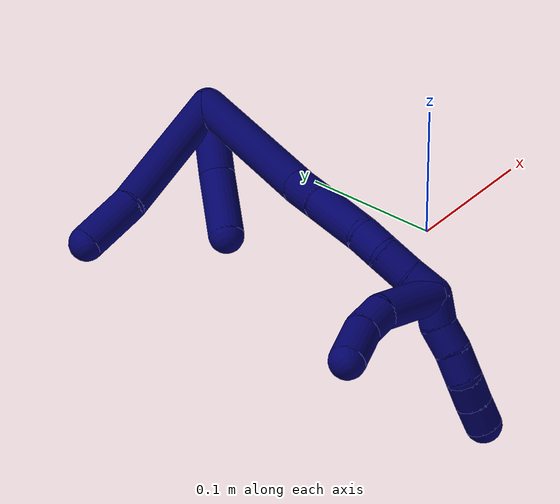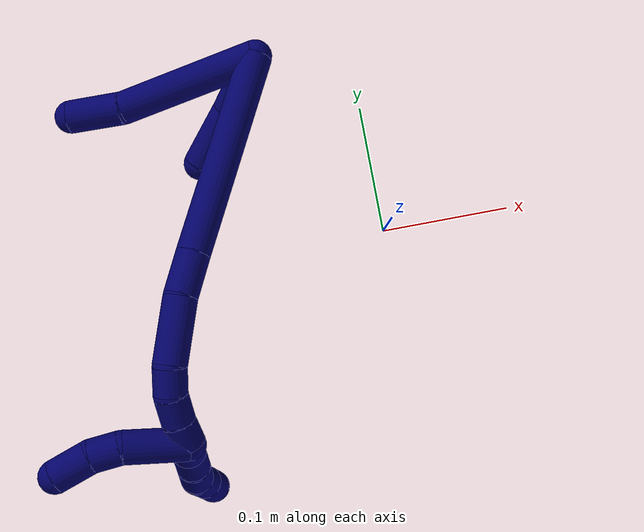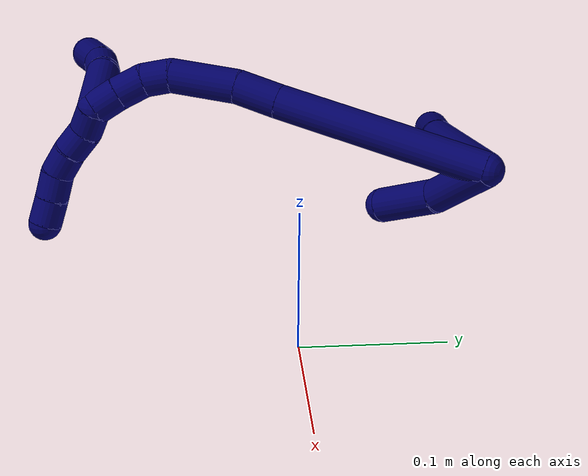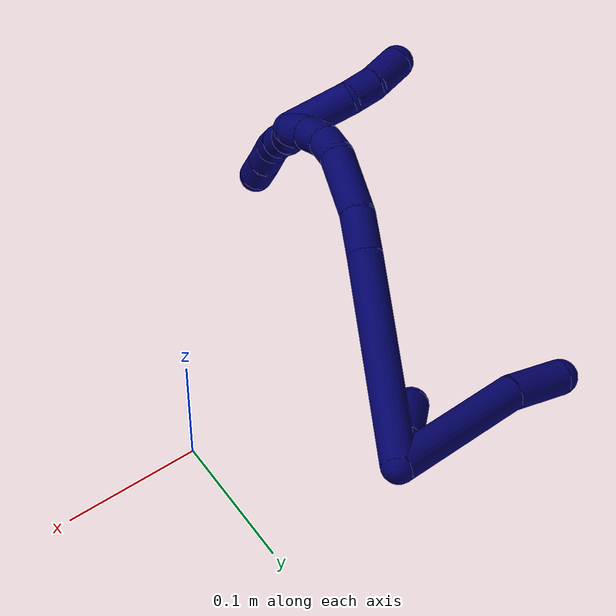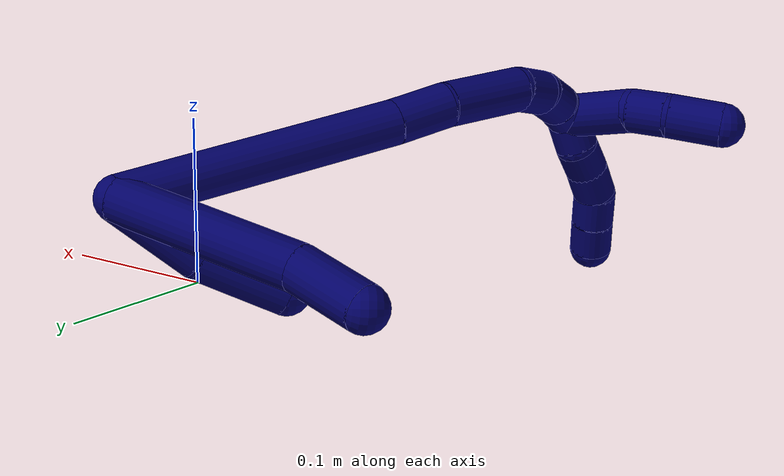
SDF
<sdf version="1.7">
 <world name="default">
  <model name="7">
   <static>0</static>
   <link name="7">
    <collision name="collision-cylinder-e_1_2_8">
     <pose>0.015121 0.030526 0.041465 -0.634601 0.285648 -0.094379</pose>
     <geometry><cylinder><radius>0.0125</radius><length>0.107327</length></cylinder></geometry>
     <surface>
      <friction><ode><mu>1.16</mu><mu2>1.16</mu2><slip1>0</slip1><slip2>0</slip2></ode></friction>
      <contact><ode><kp>1e+06</kp><kd>1</kd><max_vel>0</max_vel><min_depth>0.001</min_depth></ode></contact>
     </surface>
    </collision>
    <visual name="visual-cylinder-e_1_2_8">
     <pose>0.015121 0.030526 0.041465 -0.634601 0.285648 -0.094379</pose>
     <geometry><cylinder><radius>0.0125</radius><length>0.107327</length></cylinder></geometry>
     <material><ambient>0.003922 0 0.403922 1</ambient></material>
    </visual>
    <collision name="collision-cylinder-e_2_8_6">
     <pose>0.036765 0.076515 0.096104 -0.865147 0.310677 -0.144365</pose>
     <geometry><cylinder><radius>0.0125</radius><length>0.042673</length></cylinder></geometry>
     <surface>
      <friction><ode><mu>1.16</mu><mu2>1.16</mu2><slip1>0</slip1><slip2>0</slip2></ode></friction>
      <contact><ode><kp>1e+06</kp><kd>1</kd><max_vel>0</max_vel><min_depth>0.001</min_depth></ode></contact>
     </surface>
    </collision>
    <visual name="visual-cylinder-e_2_8_6">
     <pose>0.036765 0.076515 0.096104 -0.865147 0.310677 -0.144365</pose>
     <geometry><cylinder><radius>0.0125</radius><length>0.042673</length></cylinder></geometry>
     <material><ambient>0.003922 0 0.403922 1</ambient></material>
    </visual>
    <collision name="collision-cylinder-e_1_2_9">
     <pose>-0.011297 0.009041 0.021035 -0.405925 -0.458378 0.095946</pose>
     <geometry><cylinder><radius>0.0125</radius><length>0.051062</length></cylinder></geometry>
     <surface>
      <friction><ode><mu>1.16</mu><mu2>1.16</mu2><slip1>0</slip1><slip2>0</slip2></ode></friction>
      <contact><ode><kp>1e+06</kp><kd>1</kd><max_vel>0</max_vel><min_depth>0.001</min_depth></ode></contact>
     </surface>
    </collision>
    <visual name="visual-cylinder-e_1_2_9">
     <pose>-0.011297 0.009041 0.021035 -0.405925 -0.458378 0.095946</pose>
     <geometry><cylinder><radius>0.0125</radius><length>0.051062</length></cylinder></geometry>
     <material><ambient>0.003922 0 0.403922 1</ambient></material>
    </visual>
    <collision name="collision-cylinder-e_2_9_5">
     <pose>-0.029348 0.023549 0.064944 -0.234619 -0.279646 0.03317</pose>
     <geometry><cylinder><radius>0.0125</radius><length>0.048938</length></cylinder></geometry>
     <surface>
      <friction><ode><mu>1.16</mu><mu2>1.16</mu2><slip1>0</slip1><slip2>0</slip2></ode></friction>
      <contact><ode><kp>1e+06</kp><kd>1</kd><max_vel>0</max_vel><min_depth>0.001</min_depth></ode></contact>
     </surface>
    </collision>
    <visual name="visual-cylinder-e_2_9_5">
     <pose>-0.029348 0.023549 0.064944 -0.234619 -0.279646 0.03317</pose>
     <geometry><cylinder><radius>0.0125</radius><length>0.048938</length></cylinder></geometry>
     <material><ambient>0.003922 0 0.403922 1</ambient></material>
    </visual>
    <collision name="collision-cylinder-e_1_2_10">
     <pose>0.001326 -0.027809 0.072666 0.365505 0.017039 0.003149</pose>
     <geometry><cylinder><radius>0.0125</radius><length>0.155633</length></cylinder></geometry>
     <surface>
      <friction><ode><mu>1.16</mu><mu2>1.16</mu2><slip1>0</slip1><slip2>0</slip2></ode></friction>
      <contact><ode><kp>1e+06</kp><kd>1</kd><max_vel>0</max_vel><min_depth>0.001</min_depth></ode></contact>
     </surface>
    </collision>
    <visual name="visual-cylinder-e_1_2_10">
     <pose>0.001326 -0.027809 0.072666 0.365505 0.017039 0.003149</pose>
     <geometry><cylinder><radius>0.0125</radius><length>0.155633</length></cylinder></geometry>
     <material><ambient>0.003922 0 0.403922 1</ambient></material>
    </visual>
    <collision name="collision-cylinder-e_2_10_11">
     <pose>0.003271 -0.062087 0.160191 0.410543 0.038175 0.007949</pose>
     <geometry><cylinder><radius>0.0125</radius><length>0.032436</length></cylinder></geometry>
     <surface>
      <friction><ode><mu>1.16</mu><mu2>1.16</mu2><slip1>0</slip1><slip2>0</slip2></ode></friction>
      <contact><ode><kp>1e+06</kp><kd>1</kd><max_vel>0</max_vel><min_depth>0.001</min_depth></ode></contact>
     </surface>
    </collision>
    <visual name="visual-cylinder-e_2_10_11">
     <pose>0.003271 -0.062087 0.160191 0.410543 0.038175 0.007949</pose>
     <geometry><cylinder><radius>0.0125</radius><length>0.032436</length></cylinder></geometry>
     <material><ambient>0.003922 0 0.403922 1</ambient></material>
    </visual>
    <collision name="collision-cylinder-e_3_11_12">
     <pose>0.000409 -0.07854 0.197393 0.420294 -0.141286 -0.030184</pose>
     <geometry><cylinder><radius>0.0125</radius><length>0.049438</length></cylinder></geometry>
     <surface>
      <friction><ode><mu>1.16</mu><mu2>1.16</mu2><slip1>0</slip1><slip2>0</slip2></ode></friction>
      <contact><ode><kp>1e+06</kp><kd>1</kd><max_vel>0</max_vel><min_depth>0.001</min_depth></ode></contact>
     </surface>
    </collision>
    <visual name="visual-cylinder-e_3_11_12">
     <pose>0.000409 -0.07854 0.197393 0.420294 -0.141286 -0.030184</pose>
     <geometry><cylinder><radius>0.0125</radius><length>0.049438</length></cylinder></geometry>
     <material><ambient>0.003922 0 0.403922 1</ambient></material>
    </visual>
    <collision name="collision-cylinder-e_4_12_13">
     <pose>-0.007703 -0.091763 0.228268 0.362629 -0.469618 -0.087656</pose>
     <geometry><cylinder><radius>0.0125</radius><length>0.020466</length></cylinder></geometry>
     <surface>
      <friction><ode><mu>1.16</mu><mu2>1.16</mu2><slip1>0</slip1><slip2>0</slip2></ode></friction>
      <contact><ode><kp>1e+06</kp><kd>1</kd><max_vel>0</max_vel><min_depth>0.001</min_depth></ode></contact>
     </surface>
    </collision>
    <visual name="visual-cylinder-e_4_12_13">
     <pose>-0.007703 -0.091763 0.228268 0.362629 -0.469618 -0.087656</pose>
     <geometry><cylinder><radius>0.0125</radius><length>0.020466</length></cylinder></geometry>
     <material><ambient>0.003922 0 0.403922 1</ambient></material>
    </visual>
    <collision name="collision-cylinder-e_5_13_14">
     <pose>-0.020036 -0.097781 0.243862 0.375217 -0.792682 -0.158559</pose>
     <geometry><cylinder><radius>0.0125</radius><length>0.021628</length></cylinder></geometry>
     <surface>
      <friction><ode><mu>1.16</mu><mu2>1.16</mu2><slip1>0</slip1><slip2>0</slip2></ode></friction>
      <contact><ode><kp>1e+06</kp><kd>1</kd><max_vel>0</max_vel><min_depth>0.001</min_depth></ode></contact>
     </surface>
    </collision>
    <visual name="visual-cylinder-e_5_13_14">
     <pose>-0.020036 -0.097781 0.243862 0.375217 -0.792682 -0.158559</pose>
     <geometry><cylinder><radius>0.0125</radius><length>0.021628</length></cylinder></geometry>
     <material><ambient>0.003922 0 0.403922 1</ambient></material>
    </visual>
    <collision name="collision-cylinder-e_6_14_1">
     <pose>-0.035788 -0.103307 0.256555 0.45339 -0.909558 -0.224619</pose>
     <geometry><cylinder><radius>0.0125</radius><length>0.020399</length></cylinder></geometry>
     <surface>
      <friction><ode><mu>1.16</mu><mu2>1.16</mu2><slip1>0</slip1><slip2>0</slip2></ode></friction>
      <contact><ode><kp>1e+06</kp><kd>1</kd><max_vel>0</max_vel><min_depth>0.001</min_depth></ode></contact>
     </surface>
    </collision>
    <visual name="visual-cylinder-e_6_14_1">
     <pose>-0.035788 -0.103307 0.256555 0.45339 -0.909558 -0.224619</pose>
     <geometry><cylinder><radius>0.0125</radius><length>0.020399</length></cylinder></geometry>
     <material><ambient>0.003922 0 0.403922 1</ambient></material>
    </visual>
    <collision name="collision-cylinder-e_1_1_15">
     <pose>-0.027112 -0.094552 0.275007 -0.731027 0.77078 -0.308054</pose>
     <geometry><cylinder><radius>0.0125</radius><length>0.048014</length></cylinder></geometry>
     <surface>
      <friction><ode><mu>1.16</mu><mu2>1.16</mu2><slip1>0</slip1><slip2>0</slip2></ode></friction>
      <contact><ode><kp>1e+06</kp><kd>1</kd><max_vel>0</max_vel><min_depth>0.001</min_depth></ode></contact>
     </surface>
    </collision>
    <visual name="visual-cylinder-e_1_1_15">
     <pose>-0.027112 -0.094552 0.275007 -0.731027 0.77078 -0.308054</pose>
     <geometry><cylinder><radius>0.0125</radius><length>0.048014</length></cylinder></geometry>
     <material><ambient>0.003922 0 0.403922 1</ambient></material>
    </visual>
    <collision name="collision-cylinder-e_2_15_16">
     <pose>-0.005492 -0.077447 0.296072 -0.597313 0.456415 -0.142762</pose>
     <geometry><cylinder><radius>0.0125</radius><length>0.022214</length></cylinder></geometry>
     <surface>
      <friction><ode><mu>1.16</mu><mu2>1.16</mu2><slip1>0</slip1><slip2>0</slip2></ode></friction>
      <contact><ode><kp>1e+06</kp><kd>1</kd><max_vel>0</max_vel><min_depth>0.001</min_depth></ode></contact>
     </surface>
    </collision>
    <visual name="visual-cylinder-e_2_15_16">
     <pose>-0.005492 -0.077447 0.296072 -0.597313 0.456415 -0.142762</pose>
     <geometry><cylinder><radius>0.0125</radius><length>0.022214</length></cylinder></geometry>
     <material><ambient>0.003922 0 0.403922 1</ambient></material>
    </visual>
    <collision name="collision-cylinder-e_3_16_4">
     <pose>0.003251 -0.065903 0.317414 -0.425573 0.261431 -0.056793</pose>
     <geometry><cylinder><radius>0.0125</radius><length>0.029773</length></cylinder></geometry>
     <surface>
      <friction><ode><mu>1.16</mu><mu2>1.16</mu2><slip1>0</slip1><slip2>0</slip2></ode></friction>
      <contact><ode><kp>1e+06</kp><kd>1</kd><max_vel>0</max_vel><min_depth>0.001</min_depth></ode></contact>
     </surface>
    </collision>
    <visual name="visual-cylinder-e_3_16_4">
     <pose>0.003251 -0.065903 0.317414 -0.425573 0.261431 -0.056793</pose>
     <geometry><cylinder><radius>0.0125</radius><length>0.029773</length></cylinder></geometry>
     <material><ambient>0.003922 0 0.403922 1</ambient></material>
    </visual>
    <collision name="collision-cylinder-e_1_1_17">
     <pose>-0.05159 -0.101369 0.266427 -0.834657 -0.887112 0.415249</pose>
     <geometry><cylinder><radius>0.0125</radius><length>0.02</length></cylinder></geometry>
     <surface>
      <friction><ode><mu>1.16</mu><mu2>1.16</mu2><slip1>0</slip1><slip2>0</slip2></ode></friction>
      <contact><ode><kp>1e+06</kp><kd>1</kd><max_vel>0</max_vel><min_depth>0.001</min_depth></ode></contact>
     </surface>
    </collision>
    <visual name="visual-cylinder-e_1_1_17">
     <pose>-0.05159 -0.101369 0.266427 -0.834657 -0.887112 0.415249</pose>
     <geometry><cylinder><radius>0.0125</radius><length>0.02</length></cylinder></geometry>
     <material><ambient>0.003922 0 0.403922 1</ambient></material>
    </visual>
    <collision name="collision-cylinder-e_2_17_18">
     <pose>-0.067822 -0.095252 0.275771 -0.274427 -1.01212 0.15275</pose>
     <geometry><cylinder><radius>0.0125</radius><length>0.02</length></cylinder></geometry>
     <surface>
      <friction><ode><mu>1.16</mu><mu2>1.16</mu2><slip1>0</slip1><slip2>0</slip2></ode></friction>
      <contact><ode><kp>1e+06</kp><kd>1</kd><max_vel>0</max_vel><min_depth>0.001</min_depth></ode></contact>
     </surface>
    </collision>
    <visual name="visual-cylinder-e_2_17_18">
     <pose>-0.067822 -0.095252 0.275771 -0.274427 -1.01212 0.15275</pose>
     <geometry><cylinder><radius>0.0125</radius><length>0.02</length></cylinder></geometry>
     <material><ambient>0.003922 0 0.403922 1</ambient></material>
    </visual>
    <collision name="collision-cylinder-e_3_18_19">
     <pose>-0.08475 -0.090987 0.285415 -0.55704 -1.00621 0.312182</pose>
     <geometry><cylinder><radius>0.0125</radius><length>0.02</length></cylinder></geometry>
     <surface>
      <friction><ode><mu>1.16</mu><mu2>1.16</mu2><slip1>0</slip1><slip2>0</slip2></ode></friction>
      <contact><ode><kp>1e+06</kp><kd>1</kd><max_vel>0</max_vel><min_depth>0.001</min_depth></ode></contact>
     </surface>
    </collision>
    <visual name="visual-cylinder-e_3_18_19">
     <pose>-0.08475 -0.090987 0.285415 -0.55704 -1.00621 0.312182</pose>
     <geometry><cylinder><radius>0.0125</radius><length>0.02</length></cylinder></geometry>
     <material><ambient>0.003922 0 0.403922 1</ambient></material>
    </visual>
    <collision name="collision-cylinder-e_4_19_20">
     <pose>-0.102519 -0.084772 0.29124 -1.20833 -1.20029 0.882624</pose>
     <geometry><cylinder><radius>0.0125</radius><length>0.02</length></cylinder></geometry>
     <surface>
      <friction><ode><mu>1.16</mu><mu2>1.16</mu2><slip1>0</slip1><slip2>0</slip2></ode></friction>
      <contact><ode><kp>1e+06</kp><kd>1</kd><max_vel>0</max_vel><min_depth>0.001</min_depth></ode></contact>
     </surface>
    </collision>
    <visual name="visual-cylinder-e_4_19_20">
     <pose>-0.102519 -0.084772 0.29124 -1.20833 -1.20029 0.882624</pose>
     <geometry><cylinder><radius>0.0125</radius><length>0.02</length></cylinder></geometry>
     <material><ambient>0.003922 0 0.403922 1</ambient></material>
    </visual>
    <collision name="collision-cylinder-e_5_20_3">
     <pose>-0.121235 -0.078309 0.294035 -1.11445 -1.22086 0.822114</pose>
     <geometry><cylinder><radius>0.0125</radius><length>0.02</length></cylinder></geometry>
     <surface>
      <friction><ode><mu>1.16</mu><mu2>1.16</mu2><slip1>0</slip1><slip2>0</slip2></ode></friction>
      <contact><ode><kp>1e+06</kp><kd>1</kd><max_vel>0</max_vel><min_depth>0.001</min_depth></ode></contact>
     </surface>
    </collision>
    <visual name="visual-cylinder-e_5_20_3">
     <pose>-0.121235 -0.078309 0.294035 -1.11445 -1.22086 0.822114</pose>
     <geometry><cylinder><radius>0.0125</radius><length>0.02</length></cylinder></geometry>
     <material><ambient>0.003922 0 0.403922 1</ambient></material>
    </visual>
    <collision name="collision-sphere-3">
     <pose>-0.130629 -0.075232 0.295546 0 -0 0</pose>
     <geometry><sphere><radius>0.0125</radius></sphere></geometry>
     <surface>
      <friction><ode><mu>1.16</mu><mu2>1.16</mu2><slip1>0</slip1><slip2>0</slip2></ode></friction>
      <contact><ode><kp>1e+06</kp><kd>1</kd><max_vel>0</max_vel><min_depth>0.001</min_depth></ode></contact>
     </surface>
    </collision>
    <visual name="visual-sphere-3">
     <pose>-0.130629 -0.075232 0.295546 0 -0 0</pose>
     <geometry><sphere><radius>0.0125</radius></sphere></geometry>
     <material><ambient>0.003922 0 0.403922 1</ambient></material>
    </visual>
    <collision name="collision-sphere-20">
     <pose>-0.111841 -0.081387 0.292524 0 -0 0</pose>
     <geometry><sphere><radius>0.0125</radius></sphere></geometry>
     <surface>
      <friction><ode><mu>1.16</mu><mu2>1.16</mu2><slip1>0</slip1><slip2>0</slip2></ode></friction>
      <contact><ode><kp>1e+06</kp><kd>1</kd><max_vel>0</max_vel><min_depth>0.001</min_depth></ode></contact>
     </surface>
    </collision>
    <visual name="visual-sphere-20">
     <pose>-0.111841 -0.081387 0.292524 0 -0 0</pose>
     <geometry><sphere><radius>0.0125</radius></sphere></geometry>
     <material><ambient>0.003922 0 0.403922 1</ambient></material>
    </visual>
    <collision name="collision-sphere-19">
     <pose>-0.093198 -0.088158 0.289957 0 -0 0</pose>
     <geometry><sphere><radius>0.0125</radius></sphere></geometry>
     <surface>
      <friction><ode><mu>1.16</mu><mu2>1.16</mu2><slip1>0</slip1><slip2>0</slip2></ode></friction>
      <contact><ode><kp>1e+06</kp><kd>1</kd><max_vel>0</max_vel><min_depth>0.001</min_depth></ode></contact>
     </surface>
    </collision>
    <visual name="visual-sphere-19">
     <pose>-0.093198 -0.088158 0.289957 0 -0 0</pose>
     <geometry><sphere><radius>0.0125</radius></sphere></geometry>
     <material><ambient>0.003922 0 0.403922 1</ambient></material>
    </visual>
    <collision name="collision-sphere-10">
     <pose>0.002652 -0.055619 0.145332 0 -0 0</pose>
     <geometry><sphere><radius>0.0125</radius></sphere></geometry>
     <surface>
      <friction><ode><mu>1.16</mu><mu2>1.16</mu2><slip1>0</slip1><slip2>0</slip2></ode></friction>
      <contact><ode><kp>1e+06</kp><kd>1</kd><max_vel>0</max_vel><min_depth>0.001</min_depth></ode></contact>
     </surface>
    </collision>
    <visual name="visual-sphere-10">
     <pose>0.002652 -0.055619 0.145332 0 -0 0</pose>
     <geometry><sphere><radius>0.0125</radius></sphere></geometry>
     <material><ambient>0.003922 0 0.403922 1</ambient></material>
    </visual>
    <collision name="collision-sphere-5">
     <pose>-0.036102 0.029016 0.087818 0 -0 0</pose>
     <geometry><sphere><radius>0.0125</radius></sphere></geometry>
     <surface>
      <friction><ode><mu>1.16</mu><mu2>1.16</mu2><slip1>0</slip1><slip2>0</slip2></ode></friction>
      <contact><ode><kp>1e+06</kp><kd>1</kd><max_vel>0</max_vel><min_depth>0.001</min_depth></ode></contact>
     </surface>
    </collision>
    <visual name="visual-sphere-5">
     <pose>-0.036102 0.029016 0.087818 0 -0 0</pose>
     <geometry><sphere><radius>0.0125</radius></sphere></geometry>
     <material><ambient>0.003922 0 0.403922 1</ambient></material>
    </visual>
    <collision name="collision-sphere-6">
     <pose>0.043288 0.091978 0.109279 0 -0 0</pose>
     <geometry><sphere><radius>0.0125</radius></sphere></geometry>
     <surface>
      <friction><ode><mu>1.16</mu><mu2>1.16</mu2><slip1>0</slip1><slip2>0</slip2></ode></friction>
      <contact><ode><kp>1e+06</kp><kd>1</kd><max_vel>0</max_vel><min_depth>0.001</min_depth></ode></contact>
     </surface>
    </collision>
    <visual name="visual-sphere-6">
     <pose>0.043288 0.091978 0.109279 0 -0 0</pose>
     <geometry><sphere><radius>0.0125</radius></sphere></geometry>
     <material><ambient>0.003922 0 0.403922 1</ambient></material>
    </visual>
    <collision name="collision-sphere-9">
     <pose>-0.022595 0.018081 0.04207 0 -0 0</pose>
     <geometry><sphere><radius>0.0125</radius></sphere></geometry>
     <surface>
      <friction><ode><mu>1.16</mu><mu2>1.16</mu2><slip1>0</slip1><slip2>0</slip2></ode></friction>
      <contact><ode><kp>1e+06</kp><kd>1</kd><max_vel>0</max_vel><min_depth>0.001</min_depth></ode></contact>
     </surface>
    </collision>
    <visual name="visual-sphere-9">
     <pose>-0.022595 0.018081 0.04207 0 -0 0</pose>
     <geometry><sphere><radius>0.0125</radius></sphere></geometry>
     <material><ambient>0.003922 0 0.403922 1</ambient></material>
    </visual>
    <collision name="collision-sphere-2">
     <geometry><sphere><radius>0.0125</radius></sphere></geometry>
     <surface>
      <friction><ode><mu>1.16</mu><mu2>1.16</mu2><slip1>0</slip1><slip2>0</slip2></ode></friction>
      <contact><ode><kp>1e+06</kp><kd>1</kd><max_vel>0</max_vel><min_depth>0.001</min_depth></ode></contact>
     </surface>
    </collision>
    <visual name="visual-sphere-2">
     <geometry><sphere><radius>0.0125</radius></sphere></geometry>
     <material><ambient>0.003922 0 0.403922 1</ambient></material>
    </visual>
    <collision name="collision-sphere-8">
     <pose>0.030243 0.061051 0.082929 0 -0 0</pose>
     <geometry><sphere><radius>0.0125</radius></sphere></geometry>
     <surface>
      <friction><ode><mu>1.16</mu><mu2>1.16</mu2><slip1>0</slip1><slip2>0</slip2></ode></friction>
      <contact><ode><kp>1e+06</kp><kd>1</kd><max_vel>0</max_vel><min_depth>0.001</min_depth></ode></contact>
     </surface>
    </collision>
    <visual name="visual-sphere-8">
     <pose>0.030243 0.061051 0.082929 0 -0 0</pose>
     <geometry><sphere><radius>0.0125</radius></sphere></geometry>
     <material><ambient>0.003922 0 0.403922 1</ambient></material>
    </visual>
    <collision name="collision-sphere-11">
     <pose>0.00389 -0.068555 0.175051 0 -0 0</pose>
     <geometry><sphere><radius>0.0125</radius></sphere></geometry>
     <surface>
      <friction><ode><mu>1.16</mu><mu2>1.16</mu2><slip1>0</slip1><slip2>0</slip2></ode></friction>
      <contact><ode><kp>1e+06</kp><kd>1</kd><max_vel>0</max_vel><min_depth>0.001</min_depth></ode></contact>
     </surface>
    </collision>
    <visual name="visual-sphere-11">
     <pose>0.00389 -0.068555 0.175051 0 -0 0</pose>
     <geometry><sphere><radius>0.0125</radius></sphere></geometry>
     <material><ambient>0.003922 0 0.403922 1</ambient></material>
    </visual>
    <collision name="collision-sphere-12">
     <pose>-0.003072 -0.088526 0.219736 0 -0 0</pose>
     <geometry><sphere><radius>0.0125</radius></sphere></geometry>
     <surface>
      <friction><ode><mu>1.16</mu><mu2>1.16</mu2><slip1>0</slip1><slip2>0</slip2></ode></friction>
      <contact><ode><kp>1e+06</kp><kd>1</kd><max_vel>0</max_vel><min_depth>0.001</min_depth></ode></contact>
     </surface>
    </collision>
    <visual name="visual-sphere-12">
     <pose>-0.003072 -0.088526 0.219736 0 -0 0</pose>
     <geometry><sphere><radius>0.0125</radius></sphere></geometry>
     <material><ambient>0.003922 0 0.403922 1</ambient></material>
    </visual>
    <collision name="collision-sphere-13">
     <pose>-0.012334 -0.095 0.2368 0 -0 0</pose>
     <geometry><sphere><radius>0.0125</radius></sphere></geometry>
     <surface>
      <friction><ode><mu>1.16</mu><mu2>1.16</mu2><slip1>0</slip1><slip2>0</slip2></ode></friction>
      <contact><ode><kp>1e+06</kp><kd>1</kd><max_vel>0</max_vel><min_depth>0.001</min_depth></ode></contact>
     </surface>
    </collision>
    <visual name="visual-sphere-13">
     <pose>-0.012334 -0.095 0.2368 0 -0 0</pose>
     <geometry><sphere><radius>0.0125</radius></sphere></geometry>
     <material><ambient>0.003922 0 0.403922 1</ambient></material>
    </visual>
    <collision name="collision-sphere-14">
     <pose>-0.027738 -0.100563 0.250925 0 -0 0</pose>
     <geometry><sphere><radius>0.0125</radius></sphere></geometry>
     <surface>
      <friction><ode><mu>1.16</mu><mu2>1.16</mu2><slip1>0</slip1><slip2>0</slip2></ode></friction>
      <contact><ode><kp>1e+06</kp><kd>1</kd><max_vel>0</max_vel><min_depth>0.001</min_depth></ode></contact>
     </surface>
    </collision>
    <visual name="visual-sphere-14">
     <pose>-0.027738 -0.100563 0.250925 0 -0 0</pose>
     <geometry><sphere><radius>0.0125</radius></sphere></geometry>
     <material><ambient>0.003922 0 0.403922 1</ambient></material>
    </visual>
    <collision name="collision-sphere-1">
     <pose>-0.043838 -0.10605 0.262186 0 -0 0</pose>
     <geometry><sphere><radius>0.0125</radius></sphere></geometry>
     <surface>
      <friction><ode><mu>1.16</mu><mu2>1.16</mu2><slip1>0</slip1><slip2>0</slip2></ode></friction>
      <contact><ode><kp>1e+06</kp><kd>1</kd><max_vel>0</max_vel><min_depth>0.001</min_depth></ode></contact>
     </surface>
    </collision>
    <visual name="visual-sphere-1">
     <pose>-0.043838 -0.10605 0.262186 0 -0 0</pose>
     <geometry><sphere><radius>0.0125</radius></sphere></geometry>
     <material><ambient>0.003922 0 0.403922 1</ambient></material>
    </visual>
    <collision name="collision-sphere-18">
     <pose>-0.076302 -0.093815 0.280873 0 -0 0</pose>
     <geometry><sphere><radius>0.0125</radius></sphere></geometry>
     <surface>
      <friction><ode><mu>1.16</mu><mu2>1.16</mu2><slip1>0</slip1><slip2>0</slip2></ode></friction>
      <contact><ode><kp>1e+06</kp><kd>1</kd><max_vel>0</max_vel><min_depth>0.001</min_depth></ode></contact>
     </surface>
    </collision>
    <visual name="visual-sphere-18">
     <pose>-0.076302 -0.093815 0.280873 0 -0 0</pose>
     <geometry><sphere><radius>0.0125</radius></sphere></geometry>
     <material><ambient>0.003922 0 0.403922 1</ambient></material>
    </visual>
    <collision name="collision-sphere-15">
     <pose>-0.010387 -0.083055 0.287829 0 -0 0</pose>
     <geometry><sphere><radius>0.0125</radius></sphere></geometry>
     <surface>
      <friction><ode><mu>1.16</mu><mu2>1.16</mu2><slip1>0</slip1><slip2>0</slip2></ode></friction>
      <contact><ode><kp>1e+06</kp><kd>1</kd><max_vel>0</max_vel><min_depth>0.001</min_depth></ode></contact>
     </surface>
    </collision>
    <visual name="visual-sphere-15">
     <pose>-0.010387 -0.083055 0.287829 0 -0 0</pose>
     <geometry><sphere><radius>0.0125</radius></sphere></geometry>
     <material><ambient>0.003922 0 0.403922 1</ambient></material>
    </visual>
    <collision name="collision-sphere-16">
     <pose>-0.000596 -0.07184 0.304316 0 -0 0</pose>
     <geometry><sphere><radius>0.0125</radius></sphere></geometry>
     <surface>
      <friction><ode><mu>1.16</mu><mu2>1.16</mu2><slip1>0</slip1><slip2>0</slip2></ode></friction>
      <contact><ode><kp>1e+06</kp><kd>1</kd><max_vel>0</max_vel><min_depth>0.001</min_depth></ode></contact>
     </surface>
    </collision>
    <visual name="visual-sphere-16">
     <pose>-0.000596 -0.07184 0.304316 0 -0 0</pose>
     <geometry><sphere><radius>0.0125</radius></sphere></geometry>
     <material><ambient>0.003922 0 0.403922 1</ambient></material>
    </visual>
    <collision name="collision-sphere-4">
     <pose>0.007099 -0.059966 0.330512 0 -0 0</pose>
     <geometry><sphere><radius>0.0125</radius></sphere></geometry>
     <surface>
      <friction><ode><mu>1.16</mu><mu2>1.16</mu2><slip1>0</slip1><slip2>0</slip2></ode></friction>
      <contact><ode><kp>1e+06</kp><kd>1</kd><max_vel>0</max_vel><min_depth>0.001</min_depth></ode></contact>
     </surface>
    </collision>
    <visual name="visual-sphere-4">
     <pose>0.007099 -0.059966 0.330512 0 -0 0</pose>
     <geometry><sphere><radius>0.0125</radius></sphere></geometry>
     <material><ambient>0.003922 0 0.403922 1</ambient></material>
    </visual>
    <collision name="collision-sphere-17">
     <pose>-0.059343 -0.096688 0.270668 0 -0 0</pose>
     <geometry><sphere><radius>0.0125</radius></sphere></geometry>
     <surface>
      <friction><ode><mu>1.16</mu><mu2>1.16</mu2><slip1>0</slip1><slip2>0</slip2></ode></friction>
      <contact><ode><kp>1e+06</kp><kd>1</kd><max_vel>0</max_vel><min_depth>0.001</min_depth></ode></contact>
     </surface>
    </collision>
    <visual name="visual-sphere-17">
     <pose>-0.059343 -0.096688 0.270668 0 -0 0</pose>
     <geometry><sphere><radius>0.0125</radius></sphere></geometry>
     <material><ambient>0.003922 0 0.403922 1</ambient></material>
    </visual>
    <inertial>
     <pose>-0.012927 -0.033874 0.148981 0 -0 0</pose>
     <mass>0.75</mass>
     <inertia>
      <ixx>0.000472</ixx>
      <ixy>0</ixy>
      <ixz>0</ixz>
      <iyy>0.000452</iyy>
      <iyz>0</iyz>
      <izz>5.5e-05</izz>
     </inertia>
    </inertial>
   </link>
   <pose>-0.075964 0.135941 0.089677 -1.69665 -0.88767 2.49759</pose>
  </model>
 </world>
</sdf>
